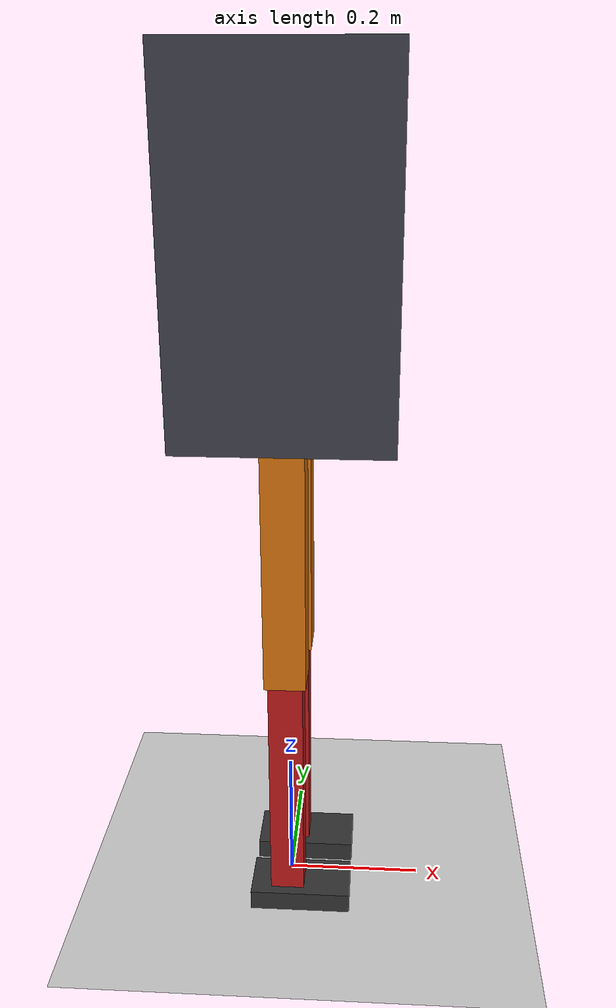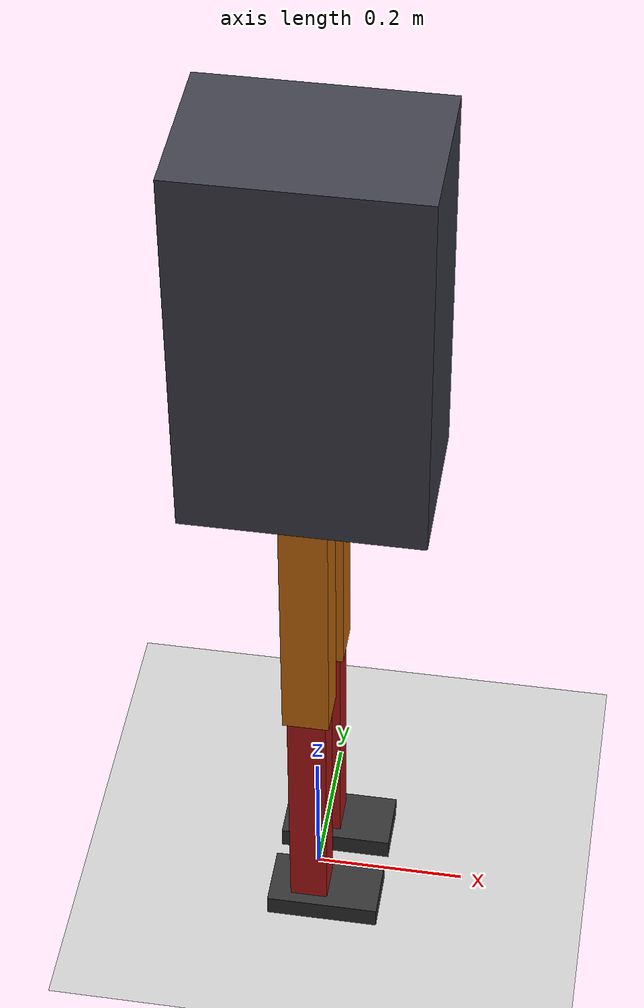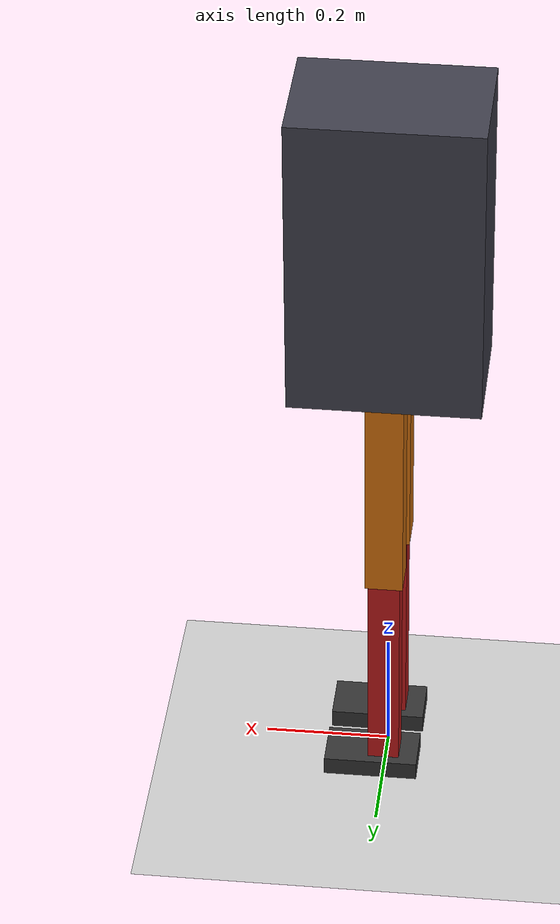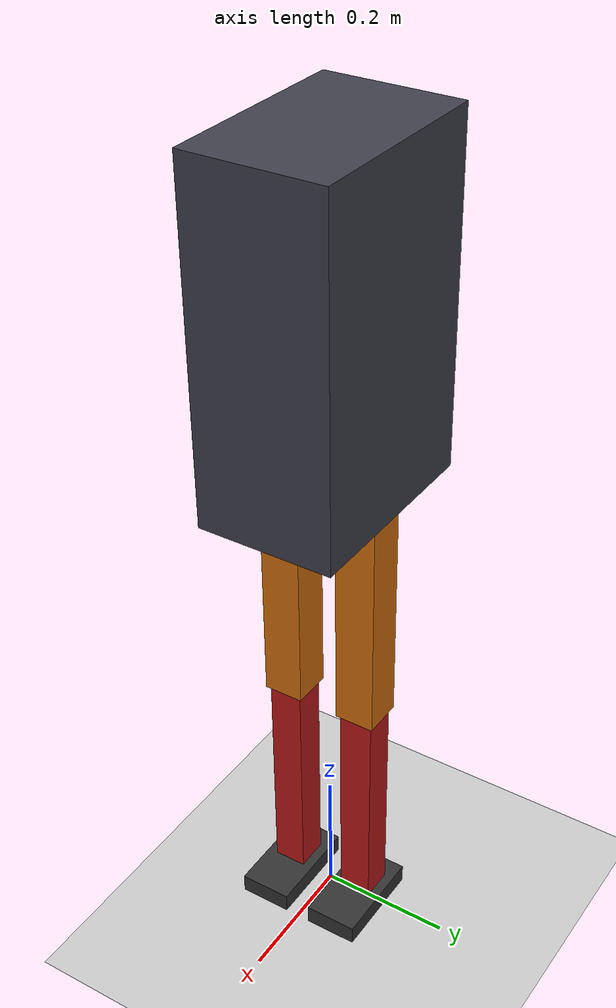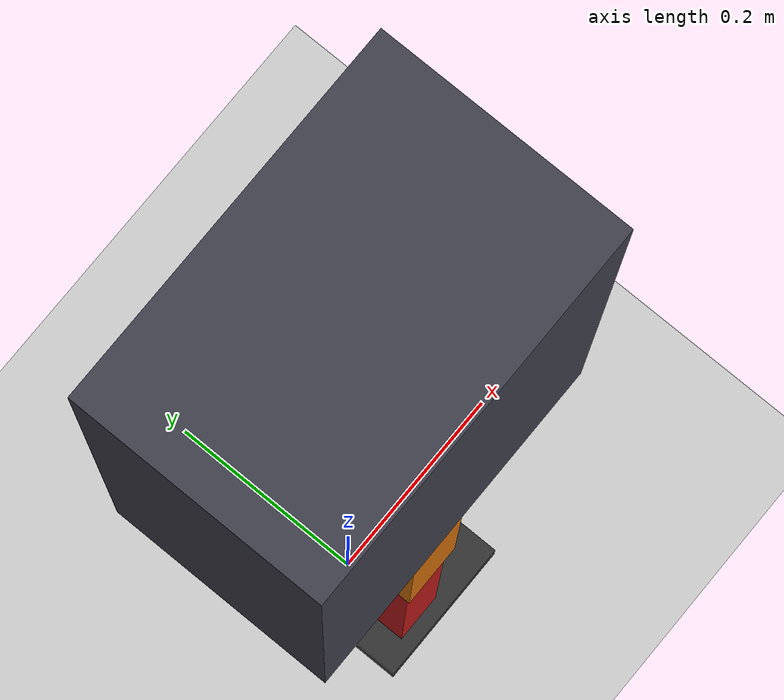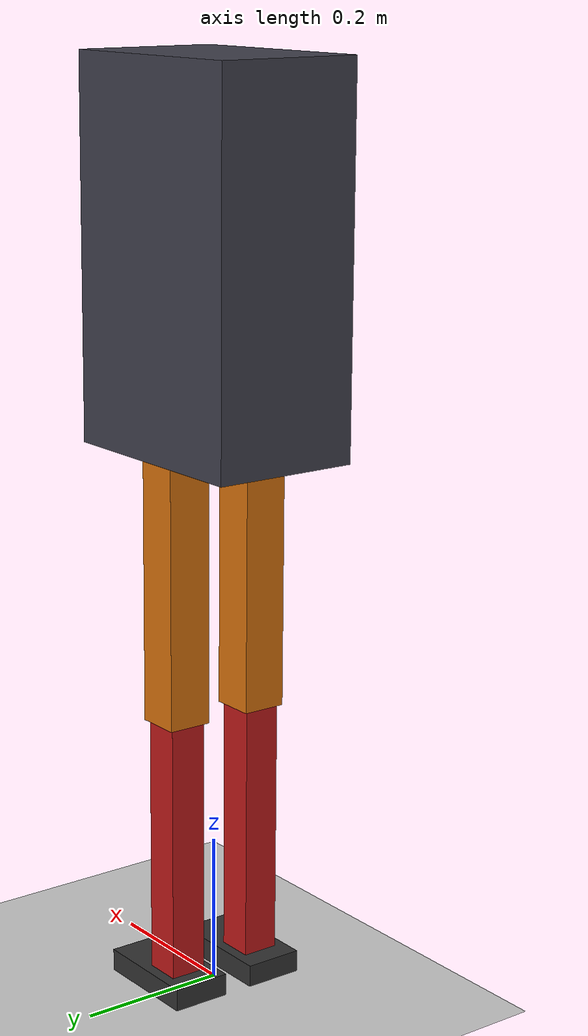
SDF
<?xml version="1.0" ?>
<sdf version="1.6">
  <world name="biped">

    <physics name="1ms" type="ignored">
      <max_step_size>0.001</max_step_size>
      <real_time_factor>1.0</real_time_factor>
    </physics>
    <plugin filename="gz-sim-physics-system" name="gz::sim::systems::Physics"></plugin>
    <plugin filename="gz-sim-user-commands-system" name="gz::sim::systems::UserCommands"></plugin>
    <plugin filename="gz-sim-scene-broadcaster-system" name="gz::sim::systems::SceneBroadcaster"></plugin>

    <light type="directional" name="sun">
      <cast_shadows>true</cast_shadows>
      <pose>0 0 10 0 0 0</pose>
      <diffuse>0.8 0.8 0.8 1</diffuse>
      <specular>0.2 0.2 0.2 1</specular>
      <direction>-0.5 0.1 -0.9</direction>
    </light>

    <model name="ground_plane">
      <static>true</static>
      <link name="link">
        <collision name="collision">
          <geometry><plane><normal>0 0 1</normal><size>100 100</size></plane></geometry>
          <surface>
            <friction><ode><mu>1.0</mu><mu2>1.0</mu2></ode></friction>
          </surface>
        </collision>
        <visual name="visual">
          <geometry><plane><normal>0 0 1</normal><size>100 100</size></plane></geometry>
        </visual>
      </link>
    </model>

    <model name="biped">
      <pose>0 0 0 0 0 0</pose>

      <link name="torso_slider_x">
        <pose>0 0 0 0 0 0</pose>
        <inertial>
          <mass>0.01</mass>
          <inertia><ixx>1e-6</ixx><iyy>1e-6</iyy><izz>1e-6</izz><ixy>0</ixy><ixz>0</ixz><iyz>0</iyz></inertia>
        </inertial>
      </link>

      <link name="torso_slider_z">
        <pose>0 0 0.98 0 0 0</pose>
        <inertial>
          <mass>0.01</mass>
          <inertia><ixx>1e-6</ixx><iyy>1e-6</iyy><izz>1e-6</izz><ixy>0</ixy><ixz>0</ixz><iyz>0</iyz></inertia>
        </inertial>
      </link>

      <link name="torso">
        <pose>0 0 0.98 0 0 0</pose>
        <inertial>
          <mass>20</mass>
          <inertia><ixx>0.5</ixx><iyy>0.5</iyy><izz>0.3</izz><ixy>0</ixy><ixz>0</ixz><iyz>0</iyz></inertia>
        </inertial>
        <visual name="visual">
          <geometry><box><size>0.3 0.2 0.5</size></box></geometry>
          <material><ambient>0.25 0.25 0.3 1</ambient><diffuse>0.25 0.25 0.3 1</diffuse></material>
        </visual>
        <collision name="collision">
          <geometry><box><size>0.3 0.2 0.5</size></box></geometry>
        </collision>
      </link>

      <link name="thigh_L">
        <pose>0 0.06 0.73 0 0 0</pose>
        <inertial>
          <mass>5</mass>
          <inertia><ixx>0.05</ixx><iyy>0.05</iyy><izz>0.005</izz><ixy>0</ixy><ixz>0</ixz><iyz>0</iyz></inertia>
        </inertial>
        <visual name="visual">
          <pose>0 0 -0.175 0 0 0</pose>
          <geometry><box><size>0.06 0.06 0.35</size></box></geometry>
          <material><ambient>0.85 0.45 0.05 1</ambient><diffuse>0.85 0.45 0.05 1</diffuse></material>
        </visual>
        <collision name="collision">
          <pose>0 0 -0.175 0 0 0</pose>
          <geometry><box><size>0.06 0.06 0.35</size></box></geometry>
        </collision>
      </link>

      <link name="shank_L">
        <pose>0 0.06 0.38 0 0 0</pose>
        <inertial>
          <mass>3</mass>
          <inertia><ixx>0.03</ixx><iyy>0.03</iyy><izz>0.003</izz><ixy>0</ixy><ixz>0</ixz><iyz>0</iyz></inertia>
        </inertial>
        <visual name="visual">
          <pose>0 0 -0.175 0 0 0</pose>
          <geometry><box><size>0.05 0.05 0.35</size></box></geometry>
          <material><ambient>0.75 0.1 0.1 1</ambient><diffuse>0.75 0.1 0.1 1</diffuse></material>
        </visual>
        <collision name="collision">
          <pose>0 0 -0.175 0 0 0</pose>
          <geometry><box><size>0.05 0.05 0.35</size></box></geometry>
        </collision>
      </link>

      <link name="foot_L">
        <pose>0 0.06 0.03 0 0 0</pose>
        <inertial>
          <mass>0.5</mass>
          <inertia><ixx>0.001</ixx><iyy>0.001</iyy><izz>0.001</izz><ixy>0</ixy><ixz>0</ixz><iyz>0</iyz></inertia>
        </inertial>
        <visual name="visual">
          <pose>0.02 0 -0.015 0 0 0</pose>
          <geometry><box><size>0.15 0.08 0.03</size></box></geometry>
          <material><ambient>0.2 0.2 0.2 1</ambient><diffuse>0.2 0.2 0.2 1</diffuse></material>
        </visual>
        <collision name="collision">
          <pose>0.02 0 -0.015 0 0 0</pose>
          <geometry><box><size>0.15 0.08 0.03</size></box></geometry>
          <surface>
            <friction><ode><mu>1.0</mu><mu2>1.0</mu2></ode></friction>
          </surface>
        </collision>
      </link>

      <link name="thigh_R">
        <pose>0 -0.06 0.73 0 0 0</pose>
        <inertial>
          <mass>5</mass>
          <inertia><ixx>0.05</ixx><iyy>0.05</iyy><izz>0.005</izz><ixy>0</ixy><ixz>0</ixz><iyz>0</iyz></inertia>
        </inertial>
        <visual name="visual">
          <pose>0 0 -0.175 0 0 0</pose>
          <geometry><box><size>0.06 0.06 0.35</size></box></geometry>
          <material><ambient>0.85 0.45 0.05 1</ambient><diffuse>0.85 0.45 0.05 1</diffuse></material>
        </visual>
        <collision name="collision">
          <pose>0 0 -0.175 0 0 0</pose>
          <geometry><box><size>0.06 0.06 0.35</size></box></geometry>
        </collision>
      </link>

      <link name="shank_R">
        <pose>0 -0.06 0.38 0 0 0</pose>
        <inertial>
          <mass>3</mass>
          <inertia><ixx>0.03</ixx><iyy>0.03</iyy><izz>0.003</izz><ixy>0</ixy><ixz>0</ixz><iyz>0</iyz></inertia>
        </inertial>
        <visual name="visual">
          <pose>0 0 -0.175 0 0 0</pose>
          <geometry><box><size>0.05 0.05 0.35</size></box></geometry>
          <material><ambient>0.75 0.1 0.1 1</ambient><diffuse>0.75 0.1 0.1 1</diffuse></material>
        </visual>
        <collision name="collision">
          <pose>0 0 -0.175 0 0 0</pose>
          <geometry><box><size>0.05 0.05 0.35</size></box></geometry>
        </collision>
      </link>

      <link name="foot_R">
        <pose>0 -0.06 0.03 0 0 0</pose>
        <inertial>
          <mass>0.5</mass>
          <inertia><ixx>0.001</ixx><iyy>0.001</iyy><izz>0.001</izz><ixy>0</ixy><ixz>0</ixz><iyz>0</iyz></inertia>
        </inertial>
        <visual name="visual">
          <pose>0.02 0 -0.015 0 0 0</pose>
          <geometry><box><size>0.15 0.08 0.03</size></box></geometry>
          <material><ambient>0.2 0.2 0.2 1</ambient><diffuse>0.2 0.2 0.2 1</diffuse></material>
        </visual>
        <collision name="collision">
          <pose>0.02 0 -0.015 0 0 0</pose>
          <geometry><box><size>0.15 0.08 0.03</size></box></geometry>
          <surface>
            <friction><ode><mu>1.0</mu><mu2>1.0</mu2></ode></friction>
          </surface>
        </collision>
      </link>

      <joint name="torso_slide_x_joint" type="prismatic">
        <parent>world</parent>
        <child>torso_slider_x</child>
        <axis>
          <xyz>1 0 0</xyz>
          <limit><lower>-1.79769e+308</lower><upper>1.79769e+308</upper></limit>
        </axis>
      </joint>

      <joint name="torso_slide_z_joint" type="prismatic">
        <parent>torso_slider_x</parent>
        <child>torso_slider_z</child>
        <axis>
          <xyz>0 0 1</xyz>
          <limit><lower>-1.0</lower><upper>2.0</upper></limit>
        </axis>
      </joint>

      <joint name="torso_pitch_joint" type="revolute">
        <parent>torso_slider_z</parent>
        <child>torso</child>
        <axis>
          <xyz>0 1 0</xyz>
          <limit><lower>-1.0</lower><upper>1.0</upper></limit>
        </axis>
      </joint>

      <joint name="hip_L_joint" type="revolute">
        <parent>torso</parent>
        <child>thigh_L</child>
        <axis>
          <xyz>0 1 0</xyz>
          <limit><lower>-1.5</lower><upper>1.5</upper><effort>60</effort></limit>
        </axis>
      </joint>

      <joint name="knee_L_joint" type="revolute">
        <parent>thigh_L</parent>
        <child>shank_L</child>
        <axis>
          <xyz>0 1 0</xyz>
          <limit><lower>-0.05</lower><upper>2.5</upper><effort>60</effort></limit>
        </axis>
      </joint>

      <joint name="foot_L_joint" type="fixed">
        <parent>shank_L</parent>
        <child>foot_L</child>
      </joint>

      <joint name="hip_R_joint" type="revolute">
        <parent>torso</parent>
        <child>thigh_R</child>
        <axis>
          <xyz>0 1 0</xyz>
          <limit><lower>-1.5</lower><upper>1.5</upper><effort>60</effort></limit>
        </axis>
      </joint>

      <joint name="knee_R_joint" type="revolute">
        <parent>thigh_R</parent>
        <child>shank_R</child>
        <axis>
          <xyz>0 1 0</xyz>
          <limit><lower>-0.05</lower><upper>2.5</upper><effort>60</effort></limit>
        </axis>
      </joint>

      <joint name="foot_R_joint" type="fixed">
        <parent>shank_R</parent>
        <child>foot_R</child>
      </joint>

      <plugin filename="gz-sim-joint-state-publisher-system" name="gz::sim::systems::JointStatePublisher"></plugin>

      <plugin filename="gz-sim-apply-joint-force-system" name="gz::sim::systems::ApplyJointForce">
        <joint_name>hip_L_joint</joint_name>
      </plugin>
      <plugin filename="gz-sim-apply-joint-force-system" name="gz::sim::systems::ApplyJointForce">
        <joint_name>knee_L_joint</joint_name>
      </plugin>
      <plugin filename="gz-sim-apply-joint-force-system" name="gz::sim::systems::ApplyJointForce">
        <joint_name>hip_R_joint</joint_name>
      </plugin>
      <plugin filename="gz-sim-apply-joint-force-system" name="gz::sim::systems::ApplyJointForce">
        <joint_name>knee_R_joint</joint_name>
      </plugin>

    </model>

  </world>
</sdf>
